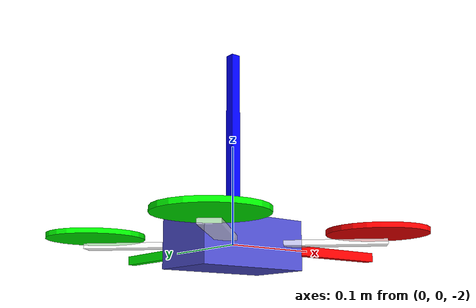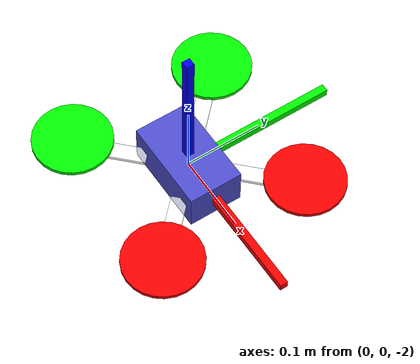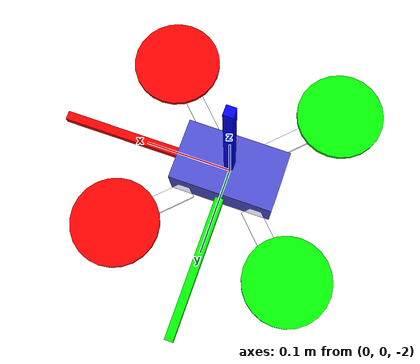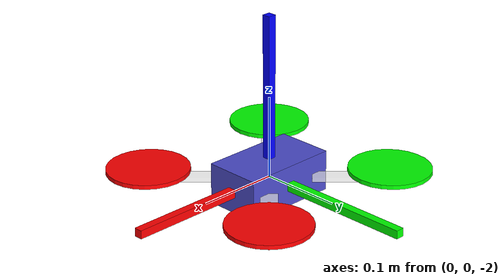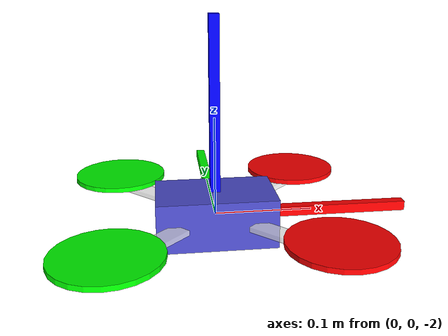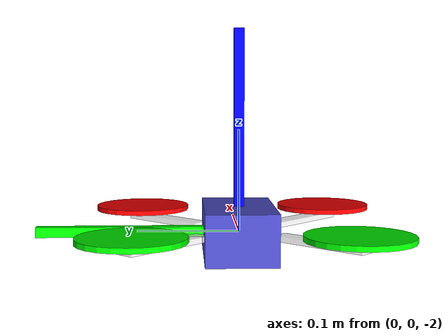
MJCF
<!-- written by Inkyu Sa, enddl22@gmail.com -->
<mujoco model="quadrotor">
	<compiler inertiafromgeom="true" coordinate="local"/>
	<option	timestep="0.001" gravity="0 0 -9.81" density="1" viscosity="1e-5" />
    <visual>
        <map fogstart="3" fogend="5" force="0.1" znear="0.1"/>
        <quality shadowsize="2048"/>
        <global offwidth="800" offheight="800"/>
    </visual>
    <asset>
        <texture type="skybox" builtin="gradient" width="128" height="128" rgb1=".4 .6 .8"
            rgb2="0 0 0"/>
        <texture name="texgeom" type="cube" builtin="flat" mark="cross" width="127" height="1278"
            rgb1="0.8 0.6 0.4" rgb2="0.8 0.6 0.4" markrgb="1 1 1" random="0.01"/>
        <texture name="texplane" type="2d" builtin="checker" rgb1=".2 .3 .4" rgb2=".1 0.15 0.2"
            width="512" height="512"/>
        <material name='MatPlane' reflectance='0.5' texture="texplane" texrepeat="1 1" texuniform="true"/>
        <material name='geom' texture="texgeom" texuniform="true"/>
    </asset>
	<worldbody>
        <light directional='true' diffuse='.8 .8 .8' specular='0.3 0.3 0.3' pos='0 0 4.0' dir='0 -.15 -1'/>
		<geom name="floor" pos="0 0 -4" size="4 4 .2" type="plane"  material="MatPlane"/>
		<body name="quadrotor" pos="0 0 -2">
			<geom name="core" type="box" pos="0 0 0" quat = "1. 0. 0. 0" size="0.06 0.035 0.025"  rgba="0.3 0.3 0.8 1" mass = ".2"/>

			<geom name="a00" type="box" pos=".071 0.071 0.0" size="0.05 0.01 0.0025"  quat = ".924 0.0 0.0 0.383" rgba="1 1 1 0.7" mass = ".025"/>
			<geom name="a10" type="box" pos=".071 -0.071 0.0" size="0.05 0.01 0.0025"  quat = ".383 0.0 0.0 0.924" rgba="1 1 1 0.7" mass = ".025"/>
			<geom name="a20" type="box" pos="-0.071 -0.071 0.0" size="0.05 0.01 0.0025"  quat = "-.383 0.0 0.0 0.924" rgba="1 1 1 0.7" mass = ".025"/>
			<geom name="a30" type="box" pos="-.071 0.071 0.0" size="0.05 0.01 0.0025"  quat = ".924 0.0 0.0 -0.383" rgba="1 1 1 0.7" mass = ".025"/>

			<joint name="root"   type="free" damping="0" armature="0" pos="0 0 0" />

			<!-- Actuator sites to attach actuators, make it invisible -->
            <site name="motor0" type="cylinder" pos=" 0.1  0.1 0.01"  size="0.01 0.0025"  quat = "1.0 0.0 0.0 0." rgba="0.3 0.8 0.3 0"/>
            <site name="motor1" type="cylinder" pos=" 0.1 -0.1 0.01"  size="0.01 0.0025"  quat = "1.0 0.0 0.0 0." rgba="0.3 0.8 0.3 0"/>
            <site name="motor2" type="cylinder" pos="-0.1 -0.1 0.01"  size="0.01 0.0025"  quat = "1.0 0.0 0.0 0." rgba="0.3 0.8 0.3 0"/>
            <site name="motor3" type="cylinder" pos="-0.1  0.1 0.01"  size="0.01 0.0025"  quat = "1.0 0.0 0.0 0." rgba="0.3 0.8 0.3 0"/>

			<!-- Thruster geometries for collisions since site's are excluded from collision checking -->
            <geom name="thruster0" type="cylinder" pos=" 0.1  0.1  0.01" size="0.05 0.0025"  quat = "1.0 0.0 0.0 0." rgba="1 0.0 0.0 1" mass = ".025"/>
            <geom name="thruster1" type="cylinder" pos=" 0.1 -0.1  0.01" size="0.05 0.0025"  quat = "1.0 0.0 0.0 0." rgba="1 0.0 0.0 1" mass = ".025"/>
            <geom name="thruster2" type="cylinder" pos="-0.1 -0.1  0.01" size="0.05 0.0025"  quat = "1.0 0.0 0.0 0." rgba="0 1 0 1" mass = ".025"/>
            <geom name="thruster3" type="cylinder" pos="-0.1  0.1  0.01" size="0.05 0.0025"  quat = "1.0 0.0 0.0 0." rgba="0 1 0 1" mass = ".025"/>

            <!-- Visualization of the coordinate frame -->
			<site name="qcX" type="box" pos="0.1 0.0 0.0" size="0.1 0.005 0.005"  quat = " 1.000  0.0  0.0    0."     rgba="1 0 0 1" />
			<site name="qcY" type="box" pos="0.0 0.1 0.0" size="0.1 0.005 0.005"  quat = " 0.707  0.0  0.0    0.707"  rgba="0 1 0 1" />
			<site name="qcZ" type="box" pos="0.0 0.0 0.1" size="0.1 0.005 0.005"  quat = "-0.707  0.0  0.707  0."     rgba="0 0 1 1" />
		</body>
	</worldbody>
    <actuator>
		<motor ctrllimited="true" ctrlrange="0.0 1.0" gear="0  0. 1. 0. 0. -0.1" site="motor0"/>
        <motor ctrllimited="true" ctrlrange="0.0 1.0" gear="0  0. 1. 0. 0.  0.1" site="motor1"/>
        <motor ctrllimited="true" ctrlrange="0.0 1.0" gear="0  0. 1. 0. 0. -0.1" site="motor2"/>
        <motor ctrllimited="true" ctrlrange="0.0 1.0" gear="0  0. 1. 0. 0.  0.1" site="motor3"/>
	</actuator>
</mujoco>
